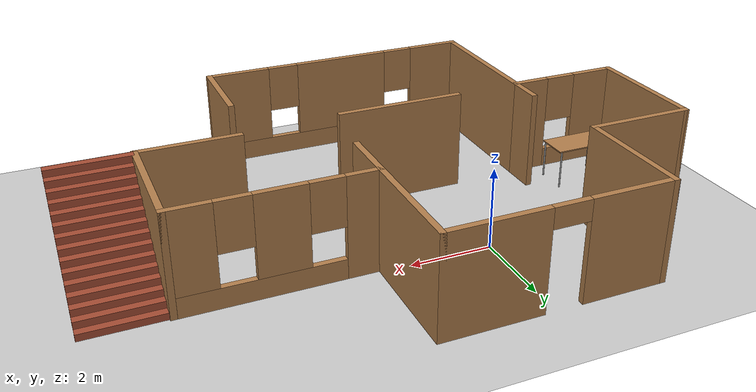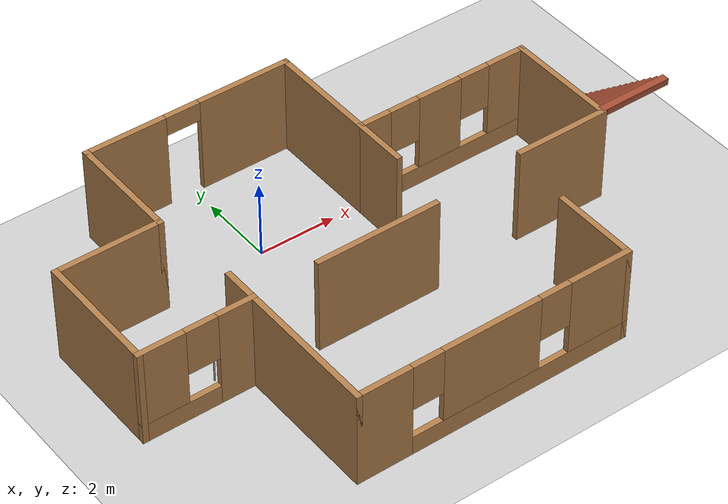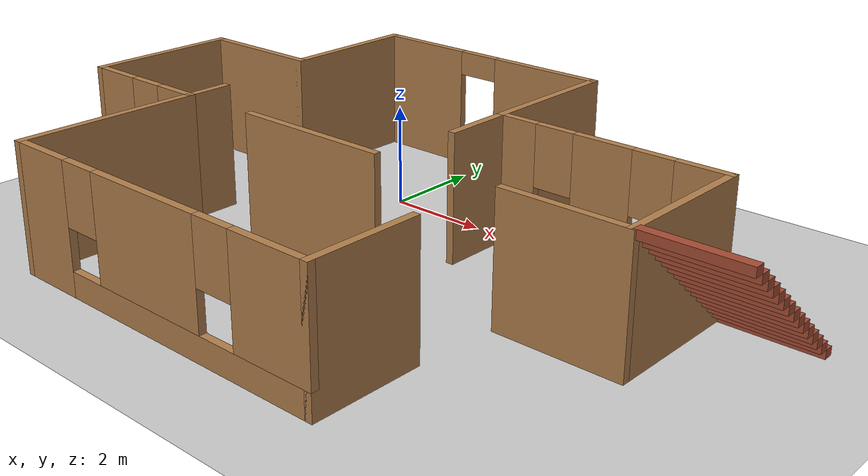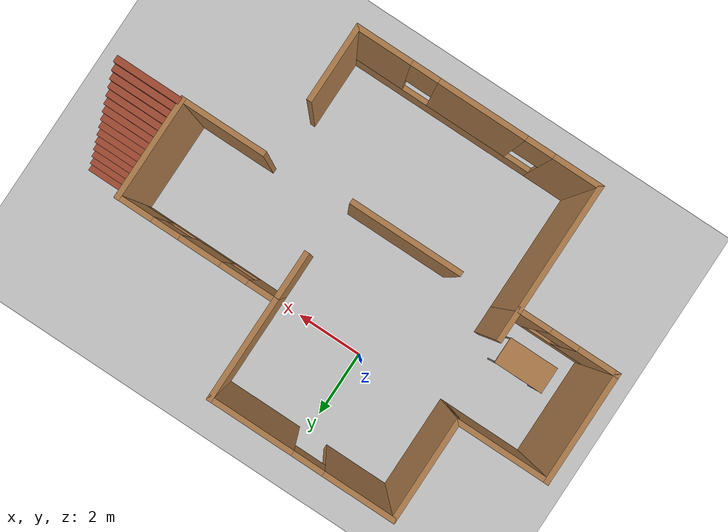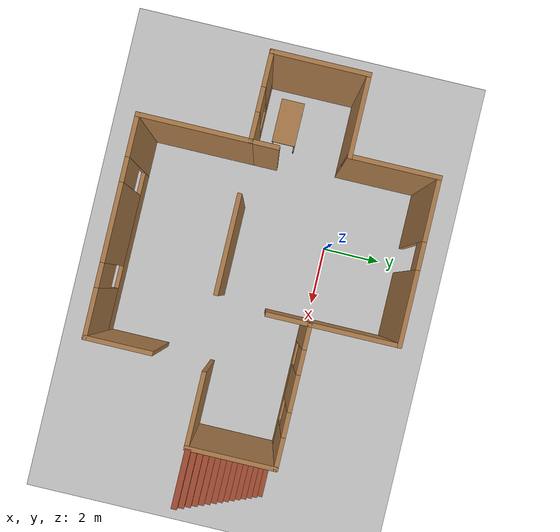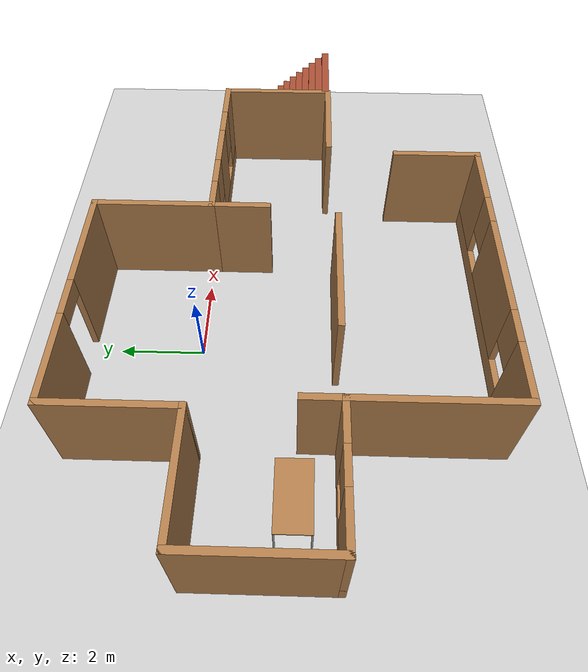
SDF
<sdf version="1.7">
 <world name="default">
  <light name="sun" type="directional">
   <pose>0 0 10 0 -0 0</pose>
   <diffuse>0.8 0.8 0.8 1</diffuse>
   <specular>0.2 0.2 0.2 1</specular>
   <attenuation>
    <range>1000</range>
    <constant>0.9</constant>
    <linear>0.01</linear>
    <quadratic>0.001</quadratic>
   </attenuation>
   <direction>-0.5 0.1 -0.9</direction>
   <spot><inner_angle>0</inner_angle><outer_angle>0</outer_angle><falloff>0</falloff></spot>
  </light>
  <model name="ground_plane">
   <static>1</static>
   <link name="link">
    <collision name="collision">
     <geometry><plane><normal>0 0 1</normal><size>100 100</size></plane></geometry>
     <surface>
      <contact><collide_bitmask>65535</collide_bitmask></contact>
      <friction><ode><mu>100</mu><mu2>50</mu2></ode></friction>
     </surface>
    </collision>
    <visual name="visual">
     <cast_shadows>0</cast_shadows>
     <geometry><plane><normal>0 0 1</normal><size>100 100</size></plane></geometry>
     <material>
      <script><uri>file://media/materials/scripts/gazebo.material</uri><name>Gazebo/Grey</name></script>
     </material>
    </visual>
   </link>
  </model>
  <gravity>0 0 -9.8</gravity>
  <magnetic_field>6e-06 2.3e-05 -4.2e-05</magnetic_field>
  <atmosphere type="adiabatic"/>
  <physics type="ode">
   <max_step_size>0.001</max_step_size>
   <real_time_factor>1</real_time_factor>
   <real_time_update_rate>1000</real_time_update_rate>
  </physics>
  <scene><ambient>0.4 0.4 0.4 1</ambient><background>0.7 0.7 0.7 1</background><shadows>1</shadows></scene>
  <spherical_coordinates>
   <surface_model>EARTH_WGS84</surface_model>
   <latitude_deg>0</latitude_deg>
   <longitude_deg>0</longitude_deg>
   <elevation>0</elevation>
   <heading_deg>0</heading_deg>
  </spherical_coordinates>
  <model name="home">
   <pose>1.91247 -2.075 0 0 -0 0</pose>
   <link name="Stairs_0">
    <visual name="Stairs_0_Visual_0">
     <pose>6.32273 1.85328 0.083333 0 -0 0</pose>
     <geometry><box><size>1.90948 0.193689 0.166667</size></box></geometry>
     <material>
      <script><uri>file://media/materials/scripts/gazebo.material</uri><name>Gazebo/Bricks</name></script>
      <ambient>1 1 1 1</ambient>
     </material>
     <meta><layer>0</layer></meta>
    </visual>
    <collision name="Stairs_0_Collision_0">
     <geometry><box><size>1.90948 0.193689 0.166667</size></box></geometry>
     <pose>6.32273 1.85328 0.083333 0 -0 0</pose>
    </collision>
    <visual name="Stairs_0_Visual_1">
     <pose>6.32273 1.65959 0.25 0 -0 0</pose>
     <geometry><box><size>1.90948 0.193689 0.166667</size></box></geometry>
     <material>
      <script><uri>file://media/materials/scripts/gazebo.material</uri><name>Gazebo/Bricks</name></script>
      <ambient>1 1 1 1</ambient>
     </material>
     <meta><layer>0</layer></meta>
    </visual>
    <collision name="Stairs_0_Collision_1">
     <geometry><box><size>1.90948 0.193689 0.166667</size></box></geometry>
     <pose>6.32273 1.65959 0.25 0 -0 0</pose>
    </collision>
    <visual name="Stairs_0_Visual_2">
     <pose>6.32273 1.4659 0.416667 0 -0 0</pose>
     <geometry><box><size>1.90948 0.193689 0.166667</size></box></geometry>
     <material>
      <script><uri>file://media/materials/scripts/gazebo.material</uri><name>Gazebo/Bricks</name></script>
      <ambient>1 1 1 1</ambient>
     </material>
     <meta><layer>0</layer></meta>
    </visual>
    <collision name="Stairs_0_Collision_2">
     <geometry><box><size>1.90948 0.193689 0.166667</size></box></geometry>
     <pose>6.32273 1.4659 0.416667 0 -0 0</pose>
    </collision>
    <visual name="Stairs_0_Visual_3">
     <pose>6.32273 1.27221 0.583333 0 -0 0</pose>
     <geometry><box><size>1.90948 0.193689 0.166667</size></box></geometry>
     <material>
      <script><uri>file://media/materials/scripts/gazebo.material</uri><name>Gazebo/Bricks</name></script>
      <ambient>1 1 1 1</ambient>
     </material>
     <meta><layer>0</layer></meta>
    </visual>
    <collision name="Stairs_0_Collision_3">
     <geometry><box><size>1.90948 0.193689 0.166667</size></box></geometry>
     <pose>6.32273 1.27221 0.583333 0 -0 0</pose>
    </collision>
    <visual name="Stairs_0_Visual_4">
     <pose>6.32273 1.07852 0.75 0 -0 0</pose>
     <geometry><box><size>1.90948 0.193689 0.166667</size></box></geometry>
     <material>
      <script><uri>file://media/materials/scripts/gazebo.material</uri><name>Gazebo/Bricks</name></script>
      <ambient>1 1 1 1</ambient>
     </material>
     <meta><layer>0</layer></meta>
    </visual>
    <collision name="Stairs_0_Collision_4">
     <geometry><box><size>1.90948 0.193689 0.166667</size></box></geometry>
     <pose>6.32273 1.07852 0.75 0 -0 0</pose>
    </collision>
    <visual name="Stairs_0_Visual_5">
     <pose>6.32273 0.884833 0.916667 0 -0 0</pose>
     <geometry><box><size>1.90948 0.193689 0.166667</size></box></geometry>
     <material>
      <script><uri>file://media/materials/scripts/gazebo.material</uri><name>Gazebo/Bricks</name></script>
      <ambient>1 1 1 1</ambient>
     </material>
     <meta><layer>0</layer></meta>
    </visual>
    <collision name="Stairs_0_Collision_5">
     <geometry><box><size>1.90948 0.193689 0.166667</size></box></geometry>
     <pose>6.32273 0.884833 0.916667 0 -0 0</pose>
    </collision>
    <visual name="Stairs_0_Visual_6">
     <pose>6.32273 0.691144 1.08333 0 -0 0</pose>
     <geometry><box><size>1.90948 0.193689 0.166667</size></box></geometry>
     <material>
      <script><uri>file://media/materials/scripts/gazebo.material</uri><name>Gazebo/Bricks</name></script>
      <ambient>1 1 1 1</ambient>
     </material>
     <meta><layer>0</layer></meta>
    </visual>
    <collision name="Stairs_0_Collision_6">
     <geometry><box><size>1.90948 0.193689 0.166667</size></box></geometry>
     <pose>6.32273 0.691144 1.08333 0 -0 0</pose>
    </collision>
    <visual name="Stairs_0_Visual_7">
     <pose>6.32273 0.497455 1.25 0 -0 0</pose>
     <geometry><box><size>1.90948 0.193689 0.166667</size></box></geometry>
     <material>
      <script><uri>file://media/materials/scripts/gazebo.material</uri><name>Gazebo/Bricks</name></script>
      <ambient>1 1 1 1</ambient>
     </material>
     <meta><layer>0</layer></meta>
    </visual>
    <collision name="Stairs_0_Collision_7">
     <geometry><box><size>1.90948 0.193689 0.166667</size></box></geometry>
     <pose>6.32273 0.497455 1.25 0 -0 0</pose>
    </collision>
    <visual name="Stairs_0_Visual_8">
     <pose>6.32273 0.303766 1.41667 0 -0 0</pose>
     <geometry><box><size>1.90948 0.193689 0.166667</size></box></geometry>
     <material>
      <script><uri>file://media/materials/scripts/gazebo.material</uri><name>Gazebo/Bricks</name></script>
      <ambient>1 1 1 1</ambient>
     </material>
     <meta><layer>0</layer></meta>
    </visual>
    <collision name="Stairs_0_Collision_8">
     <geometry><box><size>1.90948 0.193689 0.166667</size></box></geometry>
     <pose>6.32273 0.303766 1.41667 0 -0 0</pose>
    </collision>
    <visual name="Stairs_0_Visual_9">
     <pose>6.32273 0.110076 1.58333 0 -0 0</pose>
     <geometry><box><size>1.90948 0.193689 0.166667</size></box></geometry>
     <material>
      <script><uri>file://media/materials/scripts/gazebo.material</uri><name>Gazebo/Bricks</name></script>
      <ambient>1 1 1 1</ambient>
     </material>
     <meta><layer>0</layer></meta>
    </visual>
    <collision name="Stairs_0_Collision_9">
     <geometry><box><size>1.90948 0.193689 0.166667</size></box></geometry>
     <pose>6.32273 0.110076 1.58333 0 -0 0</pose>
    </collision>
    <visual name="Stairs_0_Visual_10">
     <pose>6.32273 -0.083613 1.75 0 -0 0</pose>
     <geometry><box><size>1.90948 0.193689 0.166667</size></box></geometry>
     <material>
      <script><uri>file://media/materials/scripts/gazebo.material</uri><name>Gazebo/Bricks</name></script>
      <ambient>1 1 1 1</ambient>
     </material>
     <meta><layer>0</layer></meta>
    </visual>
    <collision name="Stairs_0_Collision_10">
     <geometry><box><size>1.90948 0.193689 0.166667</size></box></geometry>
     <pose>6.32273 -0.083613 1.75 0 -0 0</pose>
    </collision>
    <visual name="Stairs_0_Visual_11">
     <pose>6.32273 -0.277302 1.91667 0 -0 0</pose>
     <geometry><box><size>1.90948 0.193689 0.166667</size></box></geometry>
     <material>
      <script><uri>file://media/materials/scripts/gazebo.material</uri><name>Gazebo/Bricks</name></script>
      <ambient>1 1 1 1</ambient>
     </material>
     <meta><layer>0</layer></meta>
    </visual>
    <collision name="Stairs_0_Collision_11">
     <geometry><box><size>1.90948 0.193689 0.166667</size></box></geometry>
     <pose>6.32273 -0.277302 1.91667 0 -0 0</pose>
    </collision>
    <visual name="Stairs_0_Visual_12">
     <pose>6.32273 -0.470991 2.08333 0 -0 0</pose>
     <geometry><box><size>1.90948 0.193689 0.166667</size></box></geometry>
     <material>
      <script><uri>file://media/materials/scripts/gazebo.material</uri><name>Gazebo/Bricks</name></script>
      <ambient>1 1 1 1</ambient>
     </material>
     <meta><layer>0</layer></meta>
    </visual>
    <collision name="Stairs_0_Collision_12">
     <geometry><box><size>1.90948 0.193689 0.166667</size></box></geometry>
     <pose>6.32273 -0.470991 2.08333 0 -0 0</pose>
    </collision>
    <visual name="Stairs_0_Visual_13">
     <pose>6.32273 -0.66468 2.25 0 -0 0</pose>
     <geometry><box><size>1.90948 0.193689 0.166667</size></box></geometry>
     <material>
      <script><uri>file://media/materials/scripts/gazebo.material</uri><name>Gazebo/Bricks</name></script>
      <ambient>1 1 1 1</ambient>
     </material>
     <meta><layer>0</layer></meta>
    </visual>
    <collision name="Stairs_0_Collision_13">
     <geometry><box><size>1.90948 0.193689 0.166667</size></box></geometry>
     <pose>6.32273 -0.66468 2.25 0 -0 0</pose>
    </collision>
    <visual name="Stairs_0_Visual_14">
     <pose>6.32273 -0.85837 2.41667 0 -0 0</pose>
     <geometry><box><size>1.90948 0.193689 0.166667</size></box></geometry>
     <material>
      <script><uri>file://media/materials/scripts/gazebo.material</uri><name>Gazebo/Bricks</name></script>
      <ambient>1 1 1 1</ambient>
     </material>
     <meta><layer>0</layer></meta>
    </visual>
    <collision name="Stairs_0_Collision_14">
     <geometry><box><size>1.90948 0.193689 0.166667</size></box></geometry>
     <pose>6.32273 -0.85837 2.41667 0 -0 0</pose>
    </collision>
   </link>
   <link name="Wall_0">
    <pose>-5.77747 -1.175 0 0 -0 3.14159</pose>
    <visual name="Wall_0_Visual_0">
     <pose>-1.001 0 1.25 0 -0 0</pose>
     <geometry><box><size>0.99799 0.15 2.5</size></box></geometry>
     <material>
      <script><uri>file://media/materials/scripts/gazebo.material</uri><name>Gazebo/Wood</name></script>
      <ambient>0.760784 0.662745 0.627451 1</ambient>
     </material>
     <meta><layer>0</layer></meta>
    </visual>
    <collision name="Wall_0_Collision_0">
     <geometry><box><size>0.99799 0.15 2.5</size></box></geometry>
     <pose>-1.001 0 1.25 0 -0 0</pose>
    </collision>
    <visual name="Wall_0_Visual_1">
     <pose>0.498995 0 0.25 0 -0 0</pose>
     <geometry><box><size>2.00201 0.15 0.5</size></box></geometry>
     <material>
      <script><uri>file://media/materials/scripts/gazebo.material</uri><name>Gazebo/Wood</name></script>
      <ambient>0.760784 0.662745 0.627451 1</ambient>
     </material>
     <meta><layer>0</layer></meta>
    </visual>
    <collision name="Wall_0_Collision_1">
     <geometry><box><size>2.00201 0.15 0.5</size></box></geometry>
     <pose>0.498995 0 0.25 0 -0 0</pose>
    </collision>
    <visual name="Wall_0_Visual_2">
     <pose>0.898995 0 1.5 0 -0 0</pose>
     <geometry><box><size>1.20201 0.15 2</size></box></geometry>
     <material>
      <script><uri>file://media/materials/scripts/gazebo.material</uri><name>Gazebo/Wood</name></script>
      <ambient>0.760784 0.662745 0.627451 1</ambient>
     </material>
     <meta><layer>0</layer></meta>
    </visual>
    <collision name="Wall_0_Collision_2">
     <geometry><box><size>1.20201 0.15 2</size></box></geometry>
     <pose>0.898995 0 1.5 0 -0 0</pose>
    </collision>
    <visual name="Wall_0_Visual_3">
     <pose>-0.10201 0 1.9 0 -0 0</pose>
     <geometry><box><size>0.8 0.15 1.2</size></box></geometry>
     <material>
      <script><uri>file://media/materials/scripts/gazebo.material</uri><name>Gazebo/Wood</name></script>
      <ambient>0.760784 0.662745 0.627451 1</ambient>
     </material>
     <meta><layer>0</layer></meta>
    </visual>
    <collision name="Wall_0_Collision_3">
     <geometry><box><size>0.8 0.15 1.2</size></box></geometry>
     <pose>-0.10201 0 1.9 0 -0 0</pose>
    </collision>
   </link>
   <link name="Wall_1">
    <collision name="Wall_1_Collision">
     <geometry><box><size>3.25 0.15 2.5</size></box></geometry>
     <pose>0 0 1.25 0 -0 0</pose>
    </collision>
    <visual name="Wall_1_Visual">
     <pose>0 0 1.25 0 -0 0</pose>
     <geometry><box><size>3.25 0.15 2.5</size></box></geometry>
     <material>
      <script><uri>file://media/materials/scripts/gazebo.material</uri><name>Gazebo/Wood</name></script>
      <ambient>0.760784 0.662745 0.627451 1</ambient>
     </material>
     <meta><layer>0</layer></meta>
    </visual>
    <pose>-7.20247 0.375 0 0 -0 1.5708</pose>
   </link>
   <link name="Wall_11">
    <collision name="Wall_11_Collision">
     <geometry><box><size>3.25 0.15 2.5</size></box></geometry>
     <pose>0 0 1.25 0 -0 0</pose>
    </collision>
    <visual name="Wall_11_Visual">
     <pose>0 0 1.25 0 -0 0</pose>
     <geometry><box><size>3.25 0.15 2.5</size></box></geometry>
     <material>
      <script><uri>file://media/materials/scripts/gazebo.material</uri><name>Gazebo/Wood</name></script>
      <ambient>0.760784 0.662745 0.627451 1</ambient>
     </material>
     <meta><layer>0</layer></meta>
    </visual>
    <pose>-1.08219 -1.12912 0 0 -0 0</pose>
   </link>
   <link name="Wall_13">
    <collision name="Wall_13_Collision">
     <geometry><box><size>1.5 0.15 2.5</size></box></geometry>
     <pose>0 0 1.25 0 -0 0</pose>
    </collision>
    <visual name="Wall_13_Visual">
     <pose>0 0 1.25 0 -0 0</pose>
     <geometry><box><size>1.5 0.15 2.5</size></box></geometry>
     <material>
      <script><uri>file://media/materials/scripts/gazebo.material</uri><name>Gazebo/Wood</name></script>
      <ambient>0.760784 0.662745 0.627451 1</ambient>
     </material>
     <meta><layer>0</layer></meta>
    </visual>
    <pose>0.747533 1.25 0 0 -0 -1.5708</pose>
   </link>
   <link name="Wall_15">
    <collision name="Wall_15_Collision">
     <geometry><box><size>1 0.15 2.5</size></box></geometry>
     <pose>0 0 1.25 0 -0 0</pose>
    </collision>
    <visual name="Wall_15_Visual">
     <pose>0 0 1.25 0 -0 0</pose>
     <geometry><box><size>1 0.15 2.5</size></box></geometry>
     <material>
      <script><uri>file://media/materials/scripts/gazebo.material</uri><name>Gazebo/Wood</name></script>
      <ambient>0.760784 0.662745 0.627451 1</ambient>
     </material>
     <meta><layer>0</layer></meta>
    </visual>
    <pose>-4.35247 -0.75 0 0 -0 1.5708</pose>
   </link>
   <link name="Wall_19">
    <collision name="Wall_19_Collision">
     <geometry><box><size>3.75 0.15 2.5</size></box></geometry>
     <pose>0 0 1.25 0 -0 0</pose>
    </collision>
    <visual name="Wall_19_Visual">
     <pose>0 0 1.25 0 -0 0</pose>
     <geometry><box><size>3.75 0.15 2.5</size></box></geometry>
     <material>
      <script><uri>file://media/materials/scripts/gazebo.material</uri><name>Gazebo/Wood</name></script>
      <ambient>0.760784 0.662745 0.627451 1</ambient>
     </material>
     <meta><layer>0</layer></meta>
    </visual>
    <pose>-4.35247 -2.975 0 0 -0 -1.5708</pose>
   </link>
   <link name="Wall_2">
    <collision name="Wall_2_Collision">
     <geometry><box><size>2.75 0.15 2.5</size></box></geometry>
     <pose>0 0 1.25 0 -0 0</pose>
    </collision>
    <visual name="Wall_2_Visual">
     <pose>0 0 1.25 0 -0 0</pose>
     <geometry><box><size>2.75 0.15 2.5</size></box></geometry>
     <material>
      <script><uri>file://media/materials/scripts/gazebo.material</uri><name>Gazebo/Wood</name></script>
      <ambient>0.760784 0.662745 0.627451 1</ambient>
     </material>
     <meta><layer>0</layer></meta>
    </visual>
    <pose>-5.90247 1.925 0 0 -0 0</pose>
   </link>
   <link name="Wall_20">
    <pose>-0.802467 -4.775 0 0 -0 0</pose>
    <visual name="Wall_20_Visual_0">
     <pose>-2.90987 0 1.25 0 -0 0</pose>
     <geometry><box><size>1.43026 0.15 2.5</size></box></geometry>
     <material>
      <script><uri>file://media/materials/scripts/gazebo.material</uri><name>Gazebo/Wood</name></script>
      <ambient>0.760784 0.662745 0.627451 1</ambient>
     </material>
     <meta><layer>0</layer></meta>
    </visual>
    <collision name="Wall_20_Collision_0">
     <geometry><box><size>1.43026 0.15 2.5</size></box></geometry>
     <pose>-2.90987 0 1.25 0 -0 0</pose>
    </collision>
    <visual name="Wall_20_Visual_1">
     <pose>0.71513 0 0.25 0 -0 0</pose>
     <geometry><box><size>5.81974 0.15 0.5</size></box></geometry>
     <material>
      <script><uri>file://media/materials/scripts/gazebo.material</uri><name>Gazebo/Wood</name></script>
      <ambient>0.760784 0.662745 0.627451 1</ambient>
     </material>
     <meta><layer>0</layer></meta>
    </visual>
    <collision name="Wall_20_Collision_1">
     <geometry><box><size>5.81974 0.15 0.5</size></box></geometry>
     <pose>0.71513 0 0.25 0 -0 0</pose>
    </collision>
    <visual name="Wall_20_Visual_2">
     <pose>-0.115693 0 1.5 0 -0 0</pose>
     <geometry><box><size>2.55809 0.15 2</size></box></geometry>
     <material>
      <script><uri>file://media/materials/scripts/gazebo.material</uri><name>Gazebo/Wood</name></script>
      <ambient>0.760784 0.662745 0.627451 1</ambient>
     </material>
     <meta><layer>0</layer></meta>
    </visual>
    <collision name="Wall_20_Collision_2">
     <geometry><box><size>2.55809 0.15 2</size></box></geometry>
     <pose>-0.115693 0 1.5 0 -0 0</pose>
    </collision>
    <visual name="Wall_20_Visual_3">
     <pose>2.79418 0 1.5 0 -0 0</pose>
     <geometry><box><size>1.66165 0.15 2</size></box></geometry>
     <material>
      <script><uri>file://media/materials/scripts/gazebo.material</uri><name>Gazebo/Wood</name></script>
      <ambient>0.760784 0.662745 0.627451 1</ambient>
     </material>
     <meta><layer>0</layer></meta>
    </visual>
    <collision name="Wall_20_Collision_3">
     <geometry><box><size>1.66165 0.15 2</size></box></geometry>
     <pose>2.79418 0 1.5 0 -0 0</pose>
    </collision>
    <visual name="Wall_20_Visual_4">
     <pose>-1.79474 0 1.9 0 -0 0</pose>
     <geometry><box><size>0.8 0.15 1.2</size></box></geometry>
     <material>
      <script><uri>file://media/materials/scripts/gazebo.material</uri><name>Gazebo/Wood</name></script>
      <ambient>0.760784 0.662745 0.627451 1</ambient>
     </material>
     <meta><layer>0</layer></meta>
    </visual>
    <collision name="Wall_20_Collision_4">
     <geometry><box><size>0.8 0.15 1.2</size></box></geometry>
     <pose>-1.79474 0 1.9 0 -0 0</pose>
    </collision>
    <visual name="Wall_20_Visual_5">
     <pose>1.56335 0 1.9 0 -0 0</pose>
     <geometry><box><size>0.8 0.15 1.2</size></box></geometry>
     <material>
      <script><uri>file://media/materials/scripts/gazebo.material</uri><name>Gazebo/Wood</name></script>
      <ambient>0.760784 0.662745 0.627451 1</ambient>
     </material>
     <meta><layer>0</layer></meta>
    </visual>
    <collision name="Wall_20_Collision_5">
     <geometry><box><size>0.8 0.15 1.2</size></box></geometry>
     <pose>1.56335 0 1.9 0 -0 0</pose>
    </collision>
   </link>
   <link name="Wall_21">
    <collision name="Wall_21_Collision">
     <geometry><box><size>2.25 0.15 2.5</size></box></geometry>
     <pose>0 0 1.25 0 -0 0</pose>
    </collision>
    <visual name="Wall_21_Visual">
     <pose>0 0 1.25 0 -0 0</pose>
     <geometry><box><size>2.25 0.15 2.5</size></box></geometry>
     <material>
      <script><uri>file://media/materials/scripts/gazebo.material</uri><name>Gazebo/Wood</name></script>
      <ambient>0.760784 0.662745 0.627451 1</ambient>
     </material>
     <meta><layer>0</layer></meta>
    </visual>
    <pose>2.74753 -3.725 0 0 -0 1.5708</pose>
   </link>
   <link name="Wall_4">
    <collision name="Wall_4_Collision">
     <geometry><box><size>3 0.15 2.5</size></box></geometry>
     <pose>0 0 1.25 0 -0 0</pose>
    </collision>
    <visual name="Wall_4_Visual">
     <pose>0 0 1.25 0 -0 0</pose>
     <geometry><box><size>3 0.15 2.5</size></box></geometry>
     <material>
      <script><uri>file://media/materials/scripts/gazebo.material</uri><name>Gazebo/Wood</name></script>
      <ambient>0.760784 0.662745 0.627451 1</ambient>
     </material>
     <meta><layer>0</layer></meta>
    </visual>
    <pose>-4.60247 3.35 0 0 -0 1.5708</pose>
   </link>
   <link name="Wall_5">
    <pose>-1.92747 4.775 0 0 -0 0</pose>
    <visual name="Wall_5_Visual_0">
     <pose>-1.69001 0 1.25 0 -0 0</pose>
     <geometry><box><size>2.11998 0.15 2.5</size></box></geometry>
     <material>
      <script><uri>file://media/materials/scripts/gazebo.material</uri><name>Gazebo/Wood</name></script>
      <ambient>0.760784 0.662745 0.627451 1</ambient>
     </material>
     <meta><layer>0</layer></meta>
    </visual>
    <collision name="Wall_5_Collision_0">
     <geometry><box><size>2.11998 0.15 2.5</size></box></geometry>
     <pose>-1.69001 0 1.25 0 -0 0</pose>
    </collision>
    <visual name="Wall_5_Visual_1">
     <pose>1.50999 0 1.25 0 -0 0</pose>
     <geometry><box><size>2.48002 0.15 2.5</size></box></geometry>
     <material>
      <script><uri>file://media/materials/scripts/gazebo.material</uri><name>Gazebo/Wood</name></script>
      <ambient>0.760784 0.662745 0.627451 1</ambient>
     </material>
     <meta><layer>0</layer></meta>
    </visual>
    <collision name="Wall_5_Collision_1">
     <geometry><box><size>2.48002 0.15 2.5</size></box></geometry>
     <pose>1.50999 0 1.25 0 -0 0</pose>
    </collision>
    <visual name="Wall_5_Visual_2">
     <pose>-0.180018 0 2.25 0 -0 0</pose>
     <geometry><box><size>0.9 0.15 0.5</size></box></geometry>
     <material>
      <script><uri>file://media/materials/scripts/gazebo.material</uri><name>Gazebo/Wood</name></script>
      <ambient>0.760784 0.662745 0.627451 1</ambient>
     </material>
     <meta><layer>0</layer></meta>
    </visual>
    <collision name="Wall_5_Collision_2">
     <geometry><box><size>0.9 0.15 0.5</size></box></geometry>
     <pose>-0.180018 0 2.25 0 -0 0</pose>
    </collision>
   </link>
   <link name="Wall_6">
    <collision name="Wall_6_Collision">
     <geometry><box><size>3 0.15 2.5</size></box></geometry>
     <pose>0 0 1.25 0 -0 0</pose>
    </collision>
    <visual name="Wall_6_Visual">
     <pose>0 0 1.25 0 -0 0</pose>
     <geometry><box><size>3 0.15 2.5</size></box></geometry>
     <material>
      <script><uri>file://media/materials/scripts/gazebo.material</uri><name>Gazebo/Wood</name></script>
      <ambient>0.760784 0.662745 0.627451 1</ambient>
     </material>
     <meta><layer>0</layer></meta>
    </visual>
    <pose>0.747533 3.35 0 0 -0 -1.5708</pose>
   </link>
   <link name="Wall_7">
    <pose>3.04753 1.925 0 0 -0 0</pose>
    <visual name="Wall_7_Visual_0">
     <pose>-1.93616 0 1.25 0 -0 0</pose>
     <geometry><box><size>0.877677 0.15 2.5</size></box></geometry>
     <material>
      <script><uri>file://media/materials/scripts/gazebo.material</uri><name>Gazebo/Wood</name></script>
      <ambient>0.760784 0.662745 0.627451 1</ambient>
     </material>
     <meta><layer>0</layer></meta>
    </visual>
    <collision name="Wall_7_Collision_0">
     <geometry><box><size>0.877677 0.15 2.5</size></box></geometry>
     <pose>-1.93616 0 1.25 0 -0 0</pose>
    </collision>
    <visual name="Wall_7_Visual_1">
     <pose>0.438838 0 0.25 0 -0 0</pose>
     <geometry><box><size>3.87232 0.15 0.5</size></box></geometry>
     <material>
      <script><uri>file://media/materials/scripts/gazebo.material</uri><name>Gazebo/Wood</name></script>
      <ambient>0.760784 0.662745 0.627451 1</ambient>
     </material>
     <meta><layer>0</layer></meta>
    </visual>
    <collision name="Wall_7_Collision_1">
     <geometry><box><size>3.87232 0.15 0.5</size></box></geometry>
     <pose>0.438838 0 0.25 0 -0 0</pose>
    </collision>
    <visual name="Wall_7_Visual_2">
     <pose>-0.10039 0 1.5 0 -0 0</pose>
     <geometry><box><size>1.19387 0.15 2</size></box></geometry>
     <material>
      <script><uri>file://media/materials/scripts/gazebo.material</uri><name>Gazebo/Wood</name></script>
      <ambient>0.760784 0.662745 0.627451 1</ambient>
     </material>
     <meta><layer>0</layer></meta>
    </visual>
    <collision name="Wall_7_Collision_2">
     <geometry><box><size>1.19387 0.15 2</size></box></geometry>
     <pose>-0.10039 0 1.5 0 -0 0</pose>
    </collision>
    <visual name="Wall_7_Visual_3">
     <pose>1.83577 0 1.5 0 -0 0</pose>
     <geometry><box><size>1.07846 0.15 2</size></box></geometry>
     <material>
      <script><uri>file://media/materials/scripts/gazebo.material</uri><name>Gazebo/Wood</name></script>
      <ambient>0.760784 0.662745 0.627451 1</ambient>
     </material>
     <meta><layer>0</layer></meta>
    </visual>
    <collision name="Wall_7_Collision_3">
     <geometry><box><size>1.07846 0.15 2</size></box></geometry>
     <pose>1.83577 0 1.5 0 -0 0</pose>
    </collision>
    <visual name="Wall_7_Visual_4">
     <pose>-1.09732 0 1.9 0 -0 0</pose>
     <geometry><box><size>0.8 0.15 1.2</size></box></geometry>
     <material>
      <script><uri>file://media/materials/scripts/gazebo.material</uri><name>Gazebo/Wood</name></script>
      <ambient>0.760784 0.662745 0.627451 1</ambient>
     </material>
     <meta><layer>0</layer></meta>
    </visual>
    <collision name="Wall_7_Collision_4">
     <geometry><box><size>0.8 0.15 1.2</size></box></geometry>
     <pose>-1.09732 0 1.9 0 -0 0</pose>
    </collision>
    <visual name="Wall_7_Visual_5">
     <pose>0.896544 0 1.9 0 -0 0</pose>
     <geometry><box><size>0.8 0.15 1.2</size></box></geometry>
     <material>
      <script><uri>file://media/materials/scripts/gazebo.material</uri><name>Gazebo/Wood</name></script>
      <ambient>0.760784 0.662745 0.627451 1</ambient>
     </material>
     <meta><layer>0</layer></meta>
    </visual>
    <collision name="Wall_7_Collision_5">
     <geometry><box><size>0.8 0.15 1.2</size></box></geometry>
     <pose>0.896544 0 1.9 0 -0 0</pose>
    </collision>
   </link>
   <link name="Wall_8">
    <collision name="Wall_8_Collision">
     <geometry><box><size>3 0.15 2.5</size></box></geometry>
     <pose>0 0 1.25 0 -0 0</pose>
    </collision>
    <visual name="Wall_8_Visual">
     <pose>0 0 1.25 0 -0 0</pose>
     <geometry><box><size>3 0.15 2.5</size></box></geometry>
     <material>
      <script><uri>file://media/materials/scripts/gazebo.material</uri><name>Gazebo/Wood</name></script>
      <ambient>0.760784 0.662745 0.627451 1</ambient>
     </material>
     <meta><layer>0</layer></meta>
    </visual>
    <pose>5.34753 0.5 0 0 -0 -1.5708</pose>
   </link>
   <link name="Wall_9">
    <collision name="Wall_9_Collision">
     <geometry><box><size>2.5 0.15 2.5</size></box></geometry>
     <pose>0 0 1.25 0 -0 0</pose>
    </collision>
    <visual name="Wall_9_Visual">
     <pose>0 0 1.25 0 -0 0</pose>
     <geometry><box><size>2.5 0.15 2.5</size></box></geometry>
     <material>
      <script><uri>file://media/materials/scripts/gazebo.material</uri><name>Gazebo/Wood</name></script>
      <ambient>0.760784 0.662745 0.627451 1</ambient>
     </material>
     <meta><layer>0</layer></meta>
    </visual>
    <pose>4.17253 -0.925 0 0 -0 3.14159</pose>
   </link>
   <static>1</static>
  </model>
  <light name="user_point_light_0" type="point">
   <pose>1.96326 5.45938 1 0 -0 0</pose>
   <diffuse>0.5 0.5 0.5 1</diffuse>
   <specular>0.1 0.1 0.1 1</specular>
   <attenuation>
    <range>20</range>
    <constant>0.5</constant>
    <linear>0.01</linear>
    <quadratic>0.001</quadratic>
   </attenuation>
   <cast_shadows>0</cast_shadows>
   <direction>0 0 -1</direction>
  </light>
  <model name="table">
   <static>1</static>
   <link name="link">
    <collision name="surface">
     <pose>0 0 1 0 -0 0</pose>
     <geometry><box><size>1.5 0.8 0.03</size></box></geometry>
     <surface><friction><ode><mu>0.6</mu><mu2>0.6</mu2></ode></friction></surface>
    </collision>
    <visual name="visual1">
     <pose>0 0 1 0 -0 0</pose>
     <geometry><box><size>1.5 0.8 0.03</size></box></geometry>
     <material>
      <script><uri>file://media/materials/scripts/gazebo.material</uri><name>Gazebo/Wood</name></script>
     </material>
    </visual>
    <collision name="front_left_leg">
     <pose>0.68 0.38 0.5 0 -0 0</pose>
     <geometry><cylinder><radius>0.02</radius><length>1</length></cylinder></geometry>
    </collision>
    <visual name="front_left_leg">
     <pose>0.68 0.38 0.5 0 -0 0</pose>
     <geometry><cylinder><radius>0.02</radius><length>1</length></cylinder></geometry>
     <material>
      <script><uri>file://media/materials/scripts/gazebo.material</uri><name>Gazebo/Grey</name></script>
     </material>
    </visual>
    <collision name="front_right_leg">
     <pose>0.68 -0.38 0.5 0 -0 0</pose>
     <geometry><cylinder><radius>0.02</radius><length>1</length></cylinder></geometry>
    </collision>
    <visual name="front_right_leg">
     <pose>0.68 -0.38 0.5 0 -0 0</pose>
     <geometry><cylinder><radius>0.02</radius><length>1</length></cylinder></geometry>
     <material>
      <script><uri>file://media/materials/scripts/gazebo.material</uri><name>Gazebo/Grey</name></script>
     </material>
    </visual>
    <collision name="back_right_leg">
     <pose>-0.68 -0.38 0.5 0 -0 0</pose>
     <geometry><cylinder><radius>0.02</radius><length>1</length></cylinder></geometry>
    </collision>
    <visual name="back_right_leg">
     <pose>-0.68 -0.38 0.5 0 -0 0</pose>
     <geometry><cylinder><radius>0.02</radius><length>1</length></cylinder></geometry>
     <material>
      <script><uri>file://media/materials/scripts/gazebo.material</uri><name>Gazebo/Grey</name></script>
     </material>
    </visual>
    <collision name="back_left_leg">
     <pose>-0.68 0.38 0.5 0 -0 0</pose>
     <geometry><cylinder><radius>0.02</radius><length>1</length></cylinder></geometry>
    </collision>
    <visual name="back_left_leg">
     <pose>-0.68 0.38 0.5 0 -0 0</pose>
     <geometry><cylinder><radius>0.02</radius><length>1</length></cylinder></geometry>
     <material>
      <script><uri>file://media/materials/scripts/gazebo.material</uri><name>Gazebo/Grey</name></script>
     </material>
    </visual>
   </link>
   <pose>-3.79105 -2.29048 0 0 -0 0</pose>
  </model>
 </world>
</sdf>
